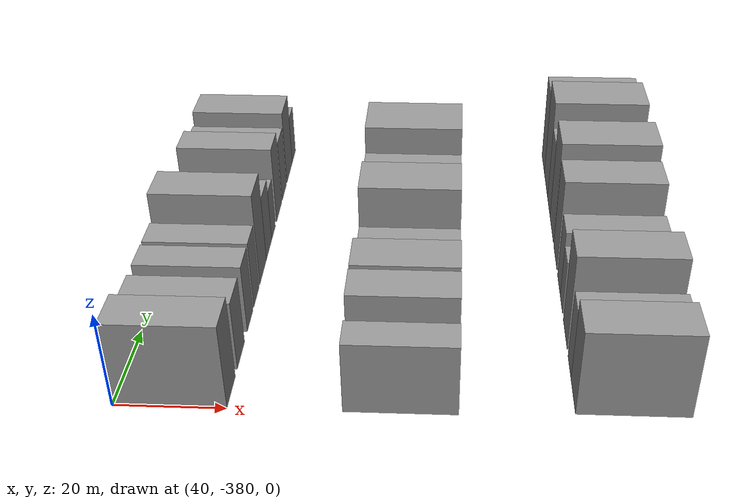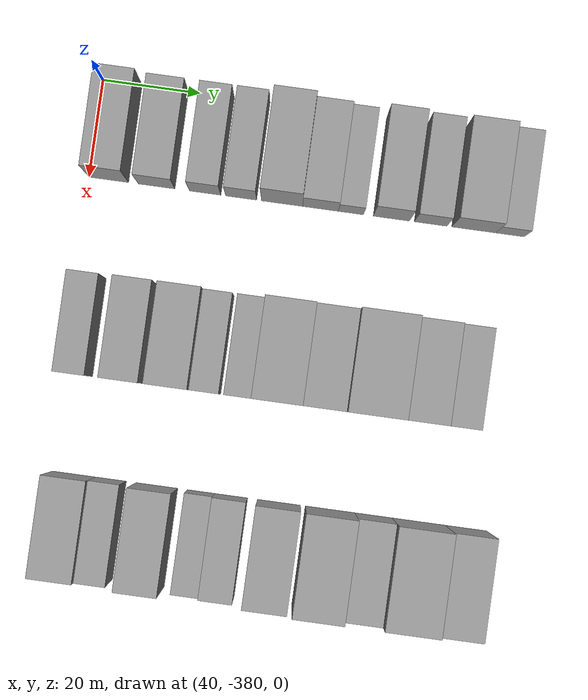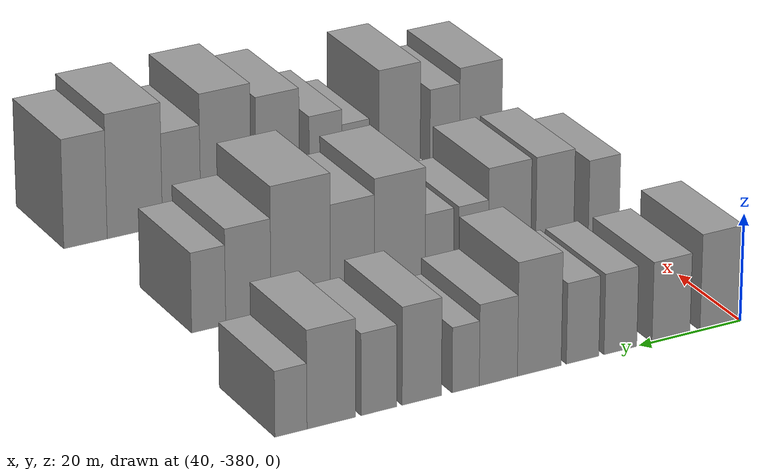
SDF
<sdf version="1.6">
 <world name="default">
  <model name="building_1">
   <static>1</static>
   <pose>50.0000 -375.9654 0 0.000000 0.000000 0.000000</pose>
   <link name="link">
    <pose>0 0 9.00 0 0 0</pose>
    <collision name="collision"><geometry><box><size>20.0000 8.0692 18.0000</size></box></geometry></collision>
    <visual name="visual">
     <cast_shadows>0</cast_shadows>
     <geometry><box><size>20.0000 8.0692 18.0000</size></box></geometry>
     <material>
      <script>
       <uri>model://grey_wall/materials/scripts</uri>
       <uri>model://grey_wall/materials/textures</uri>
       <name>vrc/grey_wall</name>
      </script>
     </material>
    </visual>
   </link>
  </model>
  <model name="building_2">
   <static>1</static>
   <pose>50.0000 -366.1815 0 0.000000 0.000000 0.000000</pose>
   <link name="link">
    <pose>0 0 7.50 0 0 0</pose>
    <collision name="collision"><geometry><box><size>20.0000 7.4985 15.0000</size></box></geometry></collision>
    <visual name="visual">
     <cast_shadows>0</cast_shadows>
     <geometry><box><size>20.0000 7.4985 15.0000</size></box></geometry>
     <material>
      <script>
       <uri>model://grey_wall/materials/scripts</uri>
       <uri>model://grey_wall/materials/textures</uri>
       <name>vrc/grey_wall</name>
      </script>
     </material>
    </visual>
   </link>
  </model>
  <model name="building_3">
   <static>1</static>
   <pose>50.0000 -356.2268 0 0.000000 0.000000 0.000000</pose>
   <link name="link">
    <pose>0 0 7.50 0 0 0</pose>
    <collision name="collision"><geometry><box><size>20.0000 6.4109 15.0000</size></box></geometry></collision>
    <visual name="visual">
     <cast_shadows>0</cast_shadows>
     <geometry><box><size>20.0000 6.4109 15.0000</size></box></geometry>
     <material>
      <script>
       <uri>model://grey_wall/materials/scripts</uri>
       <uri>model://grey_wall/materials/textures</uri>
       <name>vrc/grey_wall</name>
      </script>
     </material>
    </visual>
   </link>
  </model>
  <model name="building_4">
   <static>1</static>
   <pose>50.0000 -348.8674 0 0.000000 0.000000 0.000000</pose>
   <link name="link">
    <pose>0 0 7.50 0 0 0</pose>
    <collision name="collision"><geometry><box><size>20.0000 6.3079 15.0000</size></box></geometry></collision>
    <visual name="visual">
     <cast_shadows>0</cast_shadows>
     <geometry><box><size>20.0000 6.3079 15.0000</size></box></geometry>
     <material>
      <script>
       <uri>model://grey_wall/materials/scripts</uri>
       <uri>model://grey_wall/materials/textures</uri>
       <name>vrc/grey_wall</name>
      </script>
     </material>
    </visual>
   </link>
  </model>
  <model name="building_5">
   <static>1</static>
   <pose>50.0000 -340.4998 0 0.000000 0.000000 0.000000</pose>
   <link name="link">
    <pose>0 0 10.50 0 0 0</pose>
    <collision name="collision"><geometry><box><size>20.0000 8.4273 21.0000</size></box></geometry></collision>
    <visual name="visual">
     <cast_shadows>0</cast_shadows>
     <geometry><box><size>20.0000 8.4273 21.0000</size></box></geometry>
     <material>
      <script>
       <uri>model://grey_wall/materials/scripts</uri>
       <uri>model://grey_wall/materials/textures</uri>
       <name>vrc/grey_wall</name>
      </script>
     </material>
    </visual>
   </link>
  </model>
  <model name="building_6">
   <static>1</static>
   <pose>50.0000 -332.6491 0 0.000000 0.000000 0.000000</pose>
   <link name="link">
    <pose>0 0 7.50 0 0 0</pose>
    <collision name="collision"><geometry><box><size>20.0000 7.2742 15.0000</size></box></geometry></collision>
    <visual name="visual">
     <cast_shadows>0</cast_shadows>
     <geometry><box><size>20.0000 7.2742 15.0000</size></box></geometry>
     <material>
      <script>
       <uri>model://grey_wall/materials/scripts</uri>
       <uri>model://grey_wall/materials/textures</uri>
       <name>vrc/grey_wall</name>
      </script>
     </material>
    </visual>
   </link>
  </model>
  <model name="building_7">
   <static>1</static>
   <pose>50.0000 -326.4357 0 0.000000 0.000000 0.000000</pose>
   <link name="link">
    <pose>0 0 6.00 0 0 0</pose>
    <collision name="collision"><geometry><box><size>20.0000 5.1526 12.0000</size></box></geometry></collision>
    <visual name="visual">
     <cast_shadows>0</cast_shadows>
     <geometry><box><size>20.0000 5.1526 12.0000</size></box></geometry>
     <material>
      <script>
       <uri>model://grey_wall/materials/scripts</uri>
       <uri>model://grey_wall/materials/textures</uri>
       <name>vrc/grey_wall</name>
      </script>
     </material>
    </visual>
   </link>
  </model>
  <model name="building_8">
   <static>1</static>
   <pose>50.0000 -318.1620 0 0.000000 0.000000 0.000000</pose>
   <link name="link">
    <pose>0 0 9.00 0 0 0</pose>
    <collision name="collision"><geometry><box><size>20.0000 7.3948 18.0000</size></box></geometry></collision>
    <visual name="visual">
     <cast_shadows>0</cast_shadows>
     <geometry><box><size>20.0000 7.3948 18.0000</size></box></geometry>
     <material>
      <script>
       <uri>model://grey_wall/materials/scripts</uri>
       <uri>model://grey_wall/materials/textures</uri>
       <name>vrc/grey_wall</name>
      </script>
     </material>
    </visual>
   </link>
  </model>
  <model name="building_9">
   <static>1</static>
   <pose>50.0000 -310.1346 0 0.000000 0.000000 0.000000</pose>
   <link name="link">
    <pose>0 0 7.50 0 0 0</pose>
    <collision name="collision"><geometry><box><size>20.0000 6.6600 15.0000</size></box></geometry></collision>
    <visual name="visual">
     <cast_shadows>0</cast_shadows>
     <geometry><box><size>20.0000 6.6600 15.0000</size></box></geometry>
     <material>
      <script>
       <uri>model://grey_wall/materials/scripts</uri>
       <uri>model://grey_wall/materials/textures</uri>
       <name>vrc/grey_wall</name>
      </script>
     </material>
    </visual>
   </link>
  </model>
  <model name="building_10">
   <static>1</static>
   <pose>50.0000 -301.3234 0 0.000000 0.000000 0.000000</pose>
   <link name="link">
    <pose>0 0 9.00 0 0 0</pose>
    <collision name="collision"><geometry><box><size>20.0000 8.9625 18.0000</size></box></geometry></collision>
    <visual name="visual">
     <cast_shadows>0</cast_shadows>
     <geometry><box><size>20.0000 8.9625 18.0000</size></box></geometry>
     <material>
      <script>
       <uri>model://grey_wall/materials/scripts</uri>
       <uri>model://grey_wall/materials/textures</uri>
       <name>vrc/grey_wall</name>
      </script>
     </material>
    </visual>
   </link>
  </model>
  <model name="building_11">
   <static>1</static>
   <pose>50.0000 -293.9074 0 0.000000 0.000000 0.000000</pose>
   <link name="link">
    <pose>0 0 6.00 0 0 0</pose>
    <collision name="collision"><geometry><box><size>20.0000 5.8694 12.0000</size></box></geometry></collision>
    <visual name="visual">
     <cast_shadows>0</cast_shadows>
     <geometry><box><size>20.0000 5.8694 12.0000</size></box></geometry>
     <material>
      <script>
       <uri>model://grey_wall/materials/scripts</uri>
       <uri>model://grey_wall/materials/textures</uri>
       <name>vrc/grey_wall</name>
      </script>
     </material>
    </visual>
   </link>
  </model>
  <model name="building_85">
   <static>1</static>
   <pose>90.0000 -376.8421 0 0.000000 0.000000 0.000000</pose>
   <link name="link">
    <pose>0 0 7.50 0 0 0</pose>
    <collision name="collision"><geometry><box><size>20.0000 6.3157 15.0000</size></box></geometry></collision>
    <visual name="visual">
     <cast_shadows>0</cast_shadows>
     <geometry><box><size>20.0000 6.3157 15.0000</size></box></geometry>
     <material>
      <script>
       <uri>model://grey_wall/materials/scripts</uri>
       <uri>model://grey_wall/materials/textures</uri>
       <name>vrc/grey_wall</name>
      </script>
     </material>
    </visual>
   </link>
  </model>
  <model name="building_86">
   <static>1</static>
   <pose>90.0000 -366.8303 0 0.000000 0.000000 0.000000</pose>
   <link name="link">
    <pose>0 0 9.00 0 0 0</pose>
    <collision name="collision"><geometry><box><size>20.0000 7.7080 18.0000</size></box></geometry></collision>
    <visual name="visual">
     <cast_shadows>0</cast_shadows>
     <geometry><box><size>20.0000 7.7080 18.0000</size></box></geometry>
     <material>
      <script>
       <uri>model://grey_wall/materials/scripts</uri>
       <uri>model://grey_wall/materials/textures</uri>
       <name>vrc/grey_wall</name>
      </script>
     </material>
    </visual>
   </link>
  </model>
  <model name="building_87">
   <static>1</static>
   <pose>90.0000 -357.7024 0 0.000000 0.000000 0.000000</pose>
   <link name="link">
    <pose>0 0 9.00 0 0 0</pose>
    <collision name="collision"><geometry><box><size>20.0000 8.5478 18.0000</size></box></geometry></collision>
    <visual name="visual">
     <cast_shadows>0</cast_shadows>
     <geometry><box><size>20.0000 8.5478 18.0000</size></box></geometry>
     <material>
      <script>
       <uri>model://grey_wall/materials/scripts</uri>
       <uri>model://grey_wall/materials/textures</uri>
       <name>vrc/grey_wall</name>
      </script>
     </material>
    </visual>
   </link>
  </model>
  <model name="building_88">
   <static>1</static>
   <pose>90.0000 -350.4764 0 0.000000 0.000000 0.000000</pose>
   <link name="link">
    <pose>0 0 6.00 0 0 0</pose>
    <collision name="collision"><geometry><box><size>20.0000 5.9042 12.0000</size></box></geometry></collision>
    <visual name="visual">
     <cast_shadows>0</cast_shadows>
     <geometry><box><size>20.0000 5.9042 12.0000</size></box></geometry>
     <material>
      <script>
       <uri>model://grey_wall/materials/scripts</uri>
       <uri>model://grey_wall/materials/textures</uri>
       <name>vrc/grey_wall</name>
      </script>
     </material>
    </visual>
   </link>
  </model>
  <model name="building_89">
   <static>1</static>
   <pose>90.0000 -343.7154 0 0.000000 0.000000 0.000000</pose>
   <link name="link">
    <pose>0 0 6.00 0 0 0</pose>
    <collision name="collision"><geometry><box><size>20.0000 5.6179 12.0000</size></box></geometry></collision>
    <visual name="visual">
     <cast_shadows>0</cast_shadows>
     <geometry><box><size>20.0000 5.6179 12.0000</size></box></geometry>
     <material>
      <script>
       <uri>model://grey_wall/materials/scripts</uri>
       <uri>model://grey_wall/materials/textures</uri>
       <name>vrc/grey_wall</name>
      </script>
     </material>
    </visual>
   </link>
  </model>
  <model name="building_90">
   <static>1</static>
   <pose>90.0000 -335.8997 0 0.000000 0.000000 0.000000</pose>
   <link name="link">
    <pose>0 0 10.50 0 0 0</pose>
    <collision name="collision"><geometry><box><size>20.0000 10.0136 21.0000</size></box></geometry></collision>
    <visual name="visual">
     <cast_shadows>0</cast_shadows>
     <geometry><box><size>20.0000 10.0136 21.0000</size></box></geometry>
     <material>
      <script>
       <uri>model://grey_wall/materials/scripts</uri>
       <uri>model://grey_wall/materials/textures</uri>
       <name>vrc/grey_wall</name>
      </script>
     </material>
    </visual>
   </link>
  </model>
  <model name="building_91">
   <static>1</static>
   <pose>90.0000 -326.6148 0 0.000000 0.000000 0.000000</pose>
   <link name="link">
    <pose>0 0 9.00 0 0 0</pose>
    <collision name="collision"><geometry><box><size>20.0000 8.5561 18.0000</size></box></geometry></collision>
    <visual name="visual">
     <cast_shadows>0</cast_shadows>
     <geometry><box><size>20.0000 8.5561 18.0000</size></box></geometry>
     <material>
      <script>
       <uri>model://grey_wall/materials/scripts</uri>
       <uri>model://grey_wall/materials/textures</uri>
       <name>vrc/grey_wall</name>
      </script>
     </material>
    </visual>
   </link>
  </model>
  <model name="building_92">
   <static>1</static>
   <pose>90.0000 -316.6155 0 0.000000 0.000000 0.000000</pose>
   <link name="link">
    <pose>0 0 12.00 0 0 0</pose>
    <collision name="collision"><geometry><box><size>20.0000 11.4425 24.0000</size></box></geometry></collision>
    <visual name="visual">
     <cast_shadows>0</cast_shadows>
     <geometry><box><size>20.0000 11.4425 24.0000</size></box></geometry>
     <material>
      <script>
       <uri>model://grey_wall/materials/scripts</uri>
       <uri>model://grey_wall/materials/textures</uri>
       <name>vrc/grey_wall</name>
      </script>
     </material>
    </visual>
   </link>
  </model>
  <model name="building_93">
   <static>1</static>
   <pose>90.0000 -306.5682 0 0.000000 0.000000 0.000000</pose>
   <link name="link">
    <pose>0 0 9.00 0 0 0</pose>
    <collision name="collision"><geometry><box><size>20.0000 8.6522 18.0000</size></box></geometry></collision>
    <visual name="visual">
     <cast_shadows>0</cast_shadows>
     <geometry><box><size>20.0000 8.6522 18.0000</size></box></geometry>
     <material>
      <script>
       <uri>model://grey_wall/materials/scripts</uri>
       <uri>model://grey_wall/materials/textures</uri>
       <name>vrc/grey_wall</name>
      </script>
     </material>
    </visual>
   </link>
  </model>
  <model name="building_94">
   <static>1</static>
   <pose>90.0000 -299.0113 0 0.000000 0.000000 0.000000</pose>
   <link name="link">
    <pose>0 0 7.50 0 0 0</pose>
    <collision name="collision"><geometry><box><size>20.0000 6.4617 15.0000</size></box></geometry></collision>
    <visual name="visual">
     <cast_shadows>0</cast_shadows>
     <geometry><box><size>20.0000 6.4617 15.0000</size></box></geometry>
     <material>
      <script>
       <uri>model://grey_wall/materials/scripts</uri>
       <uri>model://grey_wall/materials/textures</uri>
       <name>vrc/grey_wall</name>
      </script>
     </material>
    </visual>
   </link>
  </model>
  <model name="building_173">
   <static>1</static>
   <pose>130.0000 -374.5744 0 0.000000 0.000000 0.000000</pose>
   <link name="link">
    <pose>0 0 9.00 0 0 0</pose>
    <collision name="collision"><geometry><box><size>20.0000 8.8513 18.0000</size></box></geometry></collision>
    <visual name="visual">
     <cast_shadows>0</cast_shadows>
     <geometry><box><size>20.0000 8.8513 18.0000</size></box></geometry>
     <material>
      <script>
       <uri>model://grey_wall/materials/scripts</uri>
       <uri>model://grey_wall/materials/textures</uri>
       <name>vrc/grey_wall</name>
      </script>
     </material>
    </visual>
   </link>
  </model>
  <model name="building_174">
   <static>1</static>
   <pose>130.0000 -367.0625 0 0.000000 0.000000 0.000000</pose>
   <link name="link">
    <pose>0 0 7.50 0 0 0</pose>
    <collision name="collision"><geometry><box><size>20.0000 6.1723 15.0000</size></box></geometry></collision>
    <visual name="visual">
     <cast_shadows>0</cast_shadows>
     <geometry><box><size>20.0000 6.1723 15.0000</size></box></geometry>
     <material>
      <script>
       <uri>model://grey_wall/materials/scripts</uri>
       <uri>model://grey_wall/materials/textures</uri>
       <name>vrc/grey_wall</name>
      </script>
     </material>
    </visual>
   </link>
  </model>
  <model name="building_175">
   <static>1</static>
   <pose>130.0000 -357.7271 0 0.000000 0.000000 0.000000</pose>
   <link name="link">
    <pose>0 0 10.50 0 0 0</pose>
    <collision name="collision"><geometry><box><size>20.0000 8.4984 21.0000</size></box></geometry></collision>
    <visual name="visual">
     <cast_shadows>0</cast_shadows>
     <geometry><box><size>20.0000 8.4984 21.0000</size></box></geometry>
     <material>
      <script>
       <uri>model://grey_wall/materials/scripts</uri>
       <uri>model://grey_wall/materials/textures</uri>
       <name>vrc/grey_wall</name>
      </script>
     </material>
    </visual>
   </link>
  </model>
  <model name="building_176">
   <static>1</static>
   <pose>130.0000 -348.6984 0 0.000000 0.000000 0.000000</pose>
   <link name="link">
    <pose>0 0 6.00 0 0 0</pose>
    <collision name="collision"><geometry><box><size>20.0000 5.5590 12.0000</size></box></geometry></collision>
    <visual name="visual">
     <cast_shadows>0</cast_shadows>
     <geometry><box><size>20.0000 5.5590 12.0000</size></box></geometry>
     <material>
      <script>
       <uri>model://grey_wall/materials/scripts</uri>
       <uri>model://grey_wall/materials/textures</uri>
       <name>vrc/grey_wall</name>
      </script>
     </material>
    </visual>
   </link>
  </model>
  <model name="building_177">
   <static>1</static>
   <pose>130.0000 -342.5789 0 0.000000 0.000000 0.000000</pose>
   <link name="link">
    <pose>0 0 7.50 0 0 0</pose>
    <collision name="collision"><geometry><box><size>20.0000 6.6800 15.0000</size></box></geometry></collision>
    <visual name="visual">
     <cast_shadows>0</cast_shadows>
     <geometry><box><size>20.0000 6.6800 15.0000</size></box></geometry>
     <material>
      <script>
       <uri>model://grey_wall/materials/scripts</uri>
       <uri>model://grey_wall/materials/textures</uri>
       <name>vrc/grey_wall</name>
      </script>
     </material>
    </visual>
   </link>
  </model>
  <model name="building_178">
   <static>1</static>
   <pose>130.0000 -332.8803 0 0.000000 0.000000 0.000000</pose>
   <link name="link">
    <pose>0 0 10.50 0 0 0</pose>
    <collision name="collision"><geometry><box><size>20.0000 8.7174 21.0000</size></box></geometry></collision>
    <visual name="visual">
     <cast_shadows>0</cast_shadows>
     <geometry><box><size>20.0000 8.7174 21.0000</size></box></geometry>
     <material>
      <script>
       <uri>model://grey_wall/materials/scripts</uri>
       <uri>model://grey_wall/materials/textures</uri>
       <name>vrc/grey_wall</name>
      </script>
     </material>
    </visual>
   </link>
  </model>
  <model name="building_179">
   <static>1</static>
   <pose>130.0000 -322.4954 0 0.000000 0.000000 0.000000</pose>
   <link name="link">
    <pose>0 0 12.00 0 0 0</pose>
    <collision name="collision"><geometry><box><size>20.0000 10.0524 24.0000</size></box></geometry></collision>
    <visual name="visual">
     <cast_shadows>0</cast_shadows>
     <geometry><box><size>20.0000 10.0524 24.0000</size></box></geometry>
     <material>
      <script>
       <uri>model://grey_wall/materials/scripts</uri>
       <uri>model://grey_wall/materials/textures</uri>
       <name>vrc/grey_wall</name>
      </script>
     </material>
    </visual>
   </link>
  </model>
  <model name="building_180">
   <static>1</static>
   <pose>130.0000 -313.6779 0 0.000000 0.000000 0.000000</pose>
   <link name="link">
    <pose>0 0 9.00 0 0 0</pose>
    <collision name="collision"><geometry><box><size>20.0000 7.5827 18.0000</size></box></geometry></collision>
    <visual name="visual">
     <cast_shadows>0</cast_shadows>
     <geometry><box><size>20.0000 7.5827 18.0000</size></box></geometry>
     <material>
      <script>
       <uri>model://grey_wall/materials/scripts</uri>
       <uri>model://grey_wall/materials/textures</uri>
       <name>vrc/grey_wall</name>
      </script>
     </material>
    </visual>
   </link>
  </model>
  <model name="building_181">
   <static>1</static>
   <pose>130.0000 -304.4776 0 0.000000 0.000000 0.000000</pose>
   <link name="link">
    <pose>0 0 12.00 0 0 0</pose>
    <collision name="collision"><geometry><box><size>20.0000 10.8179 24.0000</size></box></geometry></collision>
    <visual name="visual">
     <cast_shadows>0</cast_shadows>
     <geometry><box><size>20.0000 10.8179 24.0000</size></box></geometry>
     <material>
      <script>
       <uri>model://grey_wall/materials/scripts</uri>
       <uri>model://grey_wall/materials/textures</uri>
       <name>vrc/grey_wall</name>
      </script>
     </material>
    </visual>
   </link>
  </model>
  <model name="building_182">
   <static>1</static>
   <pose>130.0000 -294.8591 0 0.000000 0.000000 0.000000</pose>
   <link name="link">
    <pose>0 0 10.50 0 0 0</pose>
    <collision name="collision"><geometry><box><size>20.0000 8.4192 21.0000</size></box></geometry></collision>
    <visual name="visual">
     <cast_shadows>0</cast_shadows>
     <geometry><box><size>20.0000 8.4192 21.0000</size></box></geometry>
     <material>
      <script>
       <uri>model://grey_wall/materials/scripts</uri>
       <uri>model://grey_wall/materials/textures</uri>
       <name>vrc/grey_wall</name>
      </script>
     </material>
    </visual>
   </link>
  </model>
 </world>
</sdf>
